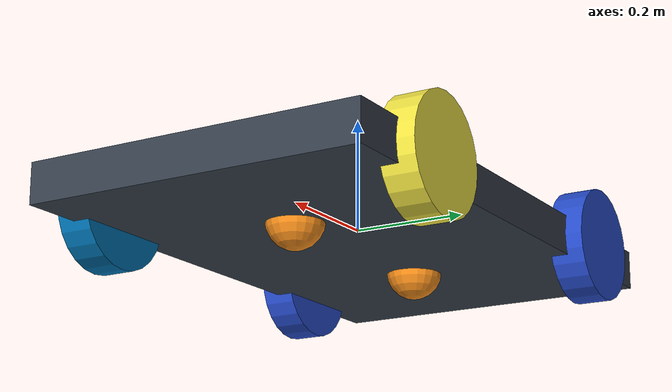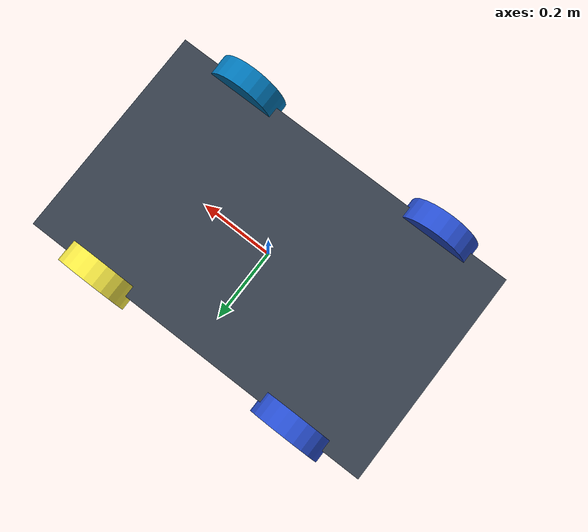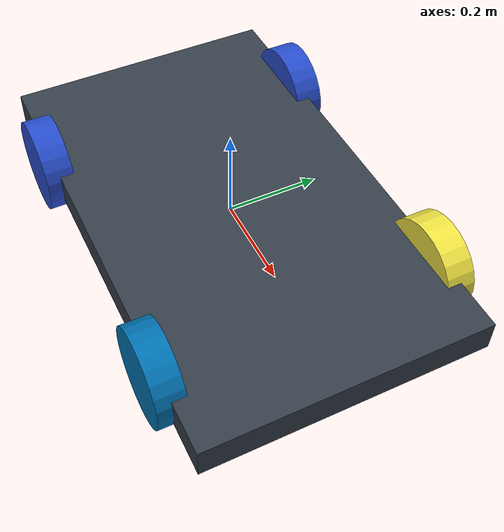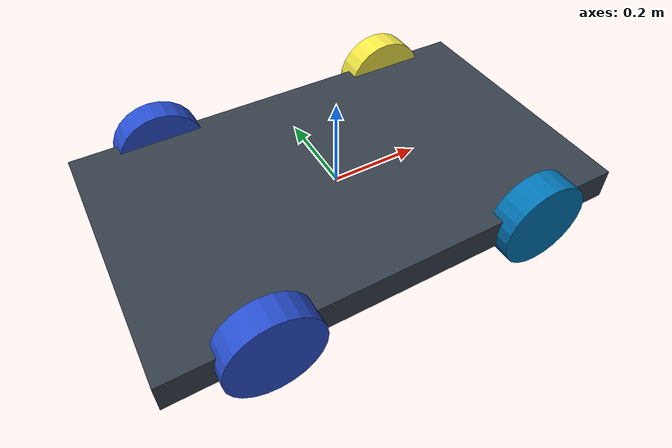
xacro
<?xml version="1.0" ?>
<robot name="m2wr" xmlns:xacro="http://www.ros.org/wiki/xacro">
  <material name="black">
    <color rgba="0.0 0.0 0.0 1.0"/>
  </material>
  <material name="blue">
    <color rgba="0.203125 0.23828125 0.28515625 1.0"/>
  </material>
  <material name="green">
    <color rgba="0.0 0.8 0.0 1.0"/>
  </material>
  <material name="grey">
    <color rgba="0.2 0.2 0.2 1.0"/>
  </material>
  <material name="orange">
    <color rgba="1.0 0.423529411765 0.0392156862745 1.0"/>
  </material>
  <material name="brown">
    <color rgba="0.870588235294 0.811764705882 0.764705882353 1.0"/>
  </material>
  <material name="red">
    <color rgba="0.80078125 0.12890625 0.1328125 1.0"/>
  </material>
  <material name="white">
    <color rgba="1.0 1.0 1.0 1.0"/>
  </material>

  <gazebo reference="link_chassis">
    <material>Gazebo/Orange</material>
  </gazebo>
  <gazebo reference="link_left_wheel">
    <material>Gazebo/Blue</material>
  </gazebo>
  <gazebo reference="link_right_wheel">
    <material>Gazebo/Blue</material>
  </gazebo>

  <gazebo>
    <plugin filename="libgazebo_ros_diff_drive.so" name="differential_drive_controller">
      <legacyMode>false</legacyMode>
      <alwaysOn>true</alwaysOn>
      <updateRate>20</updateRate>
      <leftJoint>joint_left_wheel</leftJoint>
      <rightJoint>joint_right_wheel</rightJoint>
      <wheelSeparation>0.2</wheelSeparation>
      <wheelDiameter>0.2</wheelDiameter>
      <torque>0.1</torque>
      <commandTopic>cmd_vel</commandTopic>
      <odometryTopic>odom</odometryTopic>
      <odometryFrame>odom</odometryFrame>
      <robotBaseFrame>link_chassis</robotBaseFrame>
    </plugin>
  </gazebo>

  <link name="link_chassis">
    <!-- pose and inertial -->
    <pose>0 0 0.1 0 0 0</pose>
    <inertial>
      <mass value="5"/>
      <origin rpy="0 0 0" xyz="0 0 0.1"/>
      <inertia ixx="0.0395416666667" ixy="0" ixz="0" iyy="0.106208333333" iyz="0" izz="0.106208333333"/>
    </inertial>
    <!-- body -->
    <collision name="collision_chassis">
      <geometry>
        <box size="0.5 0.3 0.07"/>
      </geometry>
    </collision>
    <visual>
      <origin rpy="0 0 0" xyz="0 0 0"/>
      <geometry>
        <box size="1.0 0.6 0.07"/>
      </geometry>
      <material name="blue"/>
    </visual>

    <!-- caster front -->
    <collision name="caster_front_collision">
      <origin rpy=" 0 0 0" xyz="0.35 0 -0.05"/>
      <geometry>
        <sphere radius="0.05"/>
      </geometry>
      <surface>
        <friction>
          <ode>
            <mu>0</mu>
            <mu2>0</mu2>
            <slip1>1.0</slip1>
            <slip2>1.0</slip2>
          </ode>
        </friction>
      </surface>
    </collision>
    <visual name="caster_front_visual">
      <origin rpy=" 0 0 0" xyz="0.2 0 -0.03"/>
      <geometry>
        <sphere radius="0.05"/>
      </geometry>
    </visual>

    <!-- caster rear -->
    <collision name="caster_front_collision">
    <origin rpy=" 0 0 0" xyz="-0.35 0 -0.05"/>
      <geometry>
        <sphere radius="0.05"/>
      </geometry>
      <surface>
        <friction>
          <ode>
            <mu>0</mu>
            <mu2>0</mu2>
            <slip1>1.0</slip1>
            <slip2>1.0</slip2>
          </ode>
        </friction>
      </surface>
    </collision>
    <visual name="caster_front_visual">
      <origin rpy=" 0 0 0" xyz="-0.2 0 -0.03"/>
      <geometry>
        <sphere radius="0.05"/>
      </geometry>
    </visual>

  </link>

  <link name="link_right_wheel">
    <inertial>
      <mass value="0.2"/>
      <origin rpy="0 1.5707 1.5707" xyz="0.15 0.15 0"/>
      <inertia ixx="0.000526666666667" ixy="0" ixz="0" iyy="0.000526666666667" iyz="0" izz="0.001"/>
    </inertial>

    <collision name="link_right_wheel_collision">
      <origin rpy="0 1.5707 1.5707" xyz="-0.15 0.15 0"/>
      <geometry>
        <cylinder length="0.04" radius="0.1"/>
      </geometry>
    </collision>

    <visual name="link_right_wheel_visual">
      <origin rpy="0 1.5707 1.5707" xyz="-0.15 0.15 0"/>
      <geometry>
        <cylinder length="0.06" radius="0.1"/>
      </geometry>
    </visual>

  </link>

  <joint name="joint_right_wheel" type="continuous">
    <origin rpy="0 0 0" xyz="-0.15 0.15 0"/>
    <child link="link_right_wheel"/>
    <parent link="link_chassis"/>
    <axis rpy="0 0 0" xyz="0 1 0"/>
    <limit effort="10000" velocity="1000"/>
    <joint_properties damping="1.0" friction="1.0"/>
  </joint>

  <link name="link_left_wheel">
    <inertial>
      <mass value="0.2"/>
      <origin rpy="0 1.5707 1.5707" xyz="-0.15 -0.15 0"/>
      <inertia ixx="0.000526666666667" ixy="0" ixz="0" iyy="0.000526666666667" iyz="0" izz="0.001"/>
    </inertial>
    <collision name="link_left_wheel_collision">
      <origin rpy="0 1.5707 1.5707" xyz="-0.15 -0.15 0"/>
      <geometry>
        <cylinder length="0.04" radius="0.1"/>
      </geometry>
    </collision>
    <visual name="link_left_wheel_visual">
      <origin rpy="0 1.5707 1.5707" xyz="-0.15 -0.15 0"/>
      <geometry>
        <cylinder length="0.06" radius="0.1"/>
      </geometry>
    </visual>
  </link>
  <joint name="joint_left_wheel" type="continuous">
    <origin rpy="0 0 0" xyz="-0.15 -0.15 0"/>
    <child link="link_left_wheel"/>
    <parent link="link_chassis"/>
    <axis rpy="0 0 0" xyz="0 1 0"/>
    <limit effort="10000" velocity="1000"/>
    <joint_properties damping="1.0" friction="1.0"/>
  </joint>

  <link name="front_link_right_wheel">
    <inertial>
      <mass value="0.2"/>
      <origin rpy="0 1.5707 1.5707" xyz="0.15 0.15 0"/>
      <inertia ixx="0.000526666666667" ixy="0" ixz="0" iyy="0.000526666666667" iyz="0" izz="0.001"/>
    </inertial>
    <collision name="front_link_right_wheel_collision">
      <origin rpy="0 1.5707 1.5707" xyz="0.15 0.15 0"/>
      <geometry>
        <cylinder length="0.04" radius="0.1"/>
      </geometry>
    </collision>
    <visual name="front_link_right_wheel_visual">
      <origin rpy="0 1.5707 1.5707" xyz="0.15 0.15 0"/>
      <geometry>
        <cylinder length="0.06" radius="0.1"/>
      </geometry>
    </visual>
  </link>
  <joint name="front_joint_right_wheel" type="continuous">
    <origin rpy="0 0 0" xyz="0.15 0.15 0"/>
    <child link="front_link_right_wheel"/>
    <parent link="link_chassis"/>
    <axis rpy="0 0 0" xyz="0 1 0"/>
    <limit effort="10000" velocity="1000"/>
    <joint_properties damping="1.0" friction="1.0"/>
  </joint>

  <link name="front_link_left_wheel">
    <inertial>
      <mass value="0.2"/>
      <origin rpy="0 1.5707 1.5707" xyz="0.15 -0.15 0"/>
      <inertia ixx="0.000526666666667" ixy="0" ixz="0" iyy="0.000526666666667" iyz="0" izz="0.001"/>
    </inertial>
    <collision name="front_link_left_wheel_collision">
      <origin rpy="0 1.5707 1.5707" xyz="0.15 -0.15 0"/>
      <geometry>
        <cylinder length="0.04" radius="0.1"/>
      </geometry>
    </collision>
    <visual name="front_link_left_wheel_visual">
      <origin rpy="0 1.5707 1.5707" xyz="0.15 -0.15 0"/>
      <geometry>
        <cylinder length="0.06" radius="0.1"/>
      </geometry>
    </visual>
  </link>
  <joint name="front_joint_left_wheel" type="continuous">
    <origin rpy="0 0 0" xyz="0.15 -0.15 0"/>
    <child link="front_link_left_wheel"/>
    <parent link="link_chassis"/>
    <axis rpy="0 0 0" xyz="0 1 0"/>
    <limit effort="10000" velocity="1000"/>
    <joint_properties damping="1.0" friction="1.0"/>
  </joint>
</robot>
